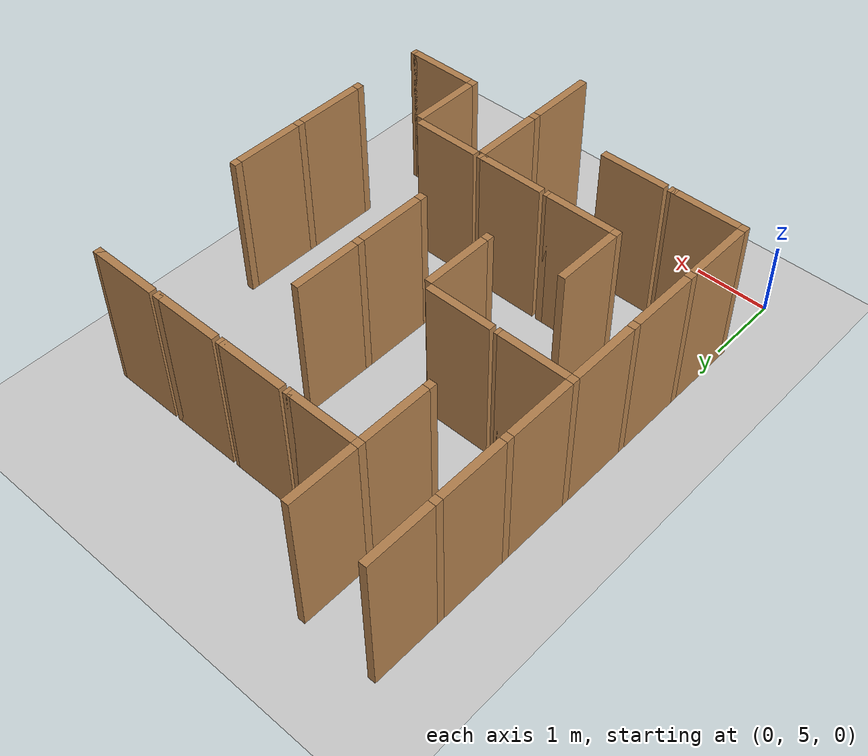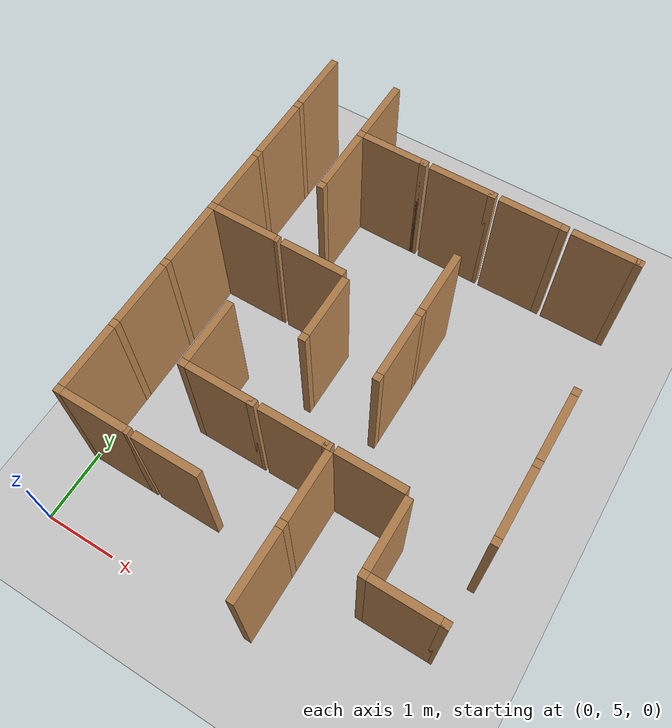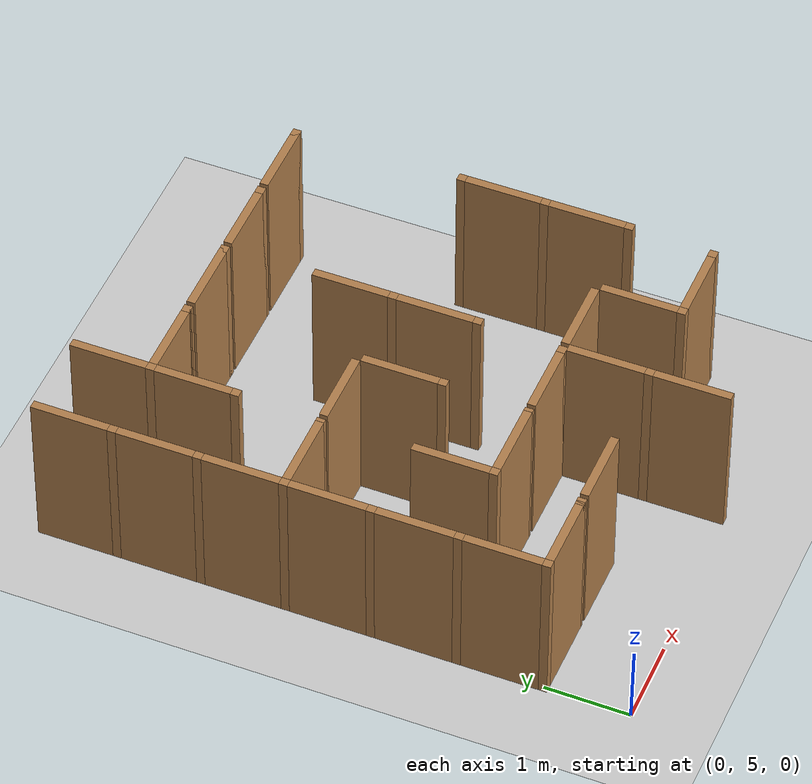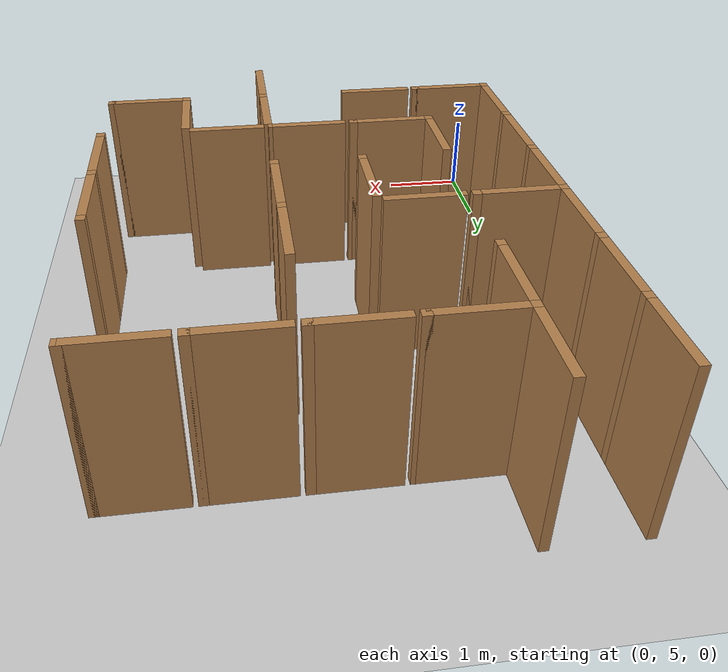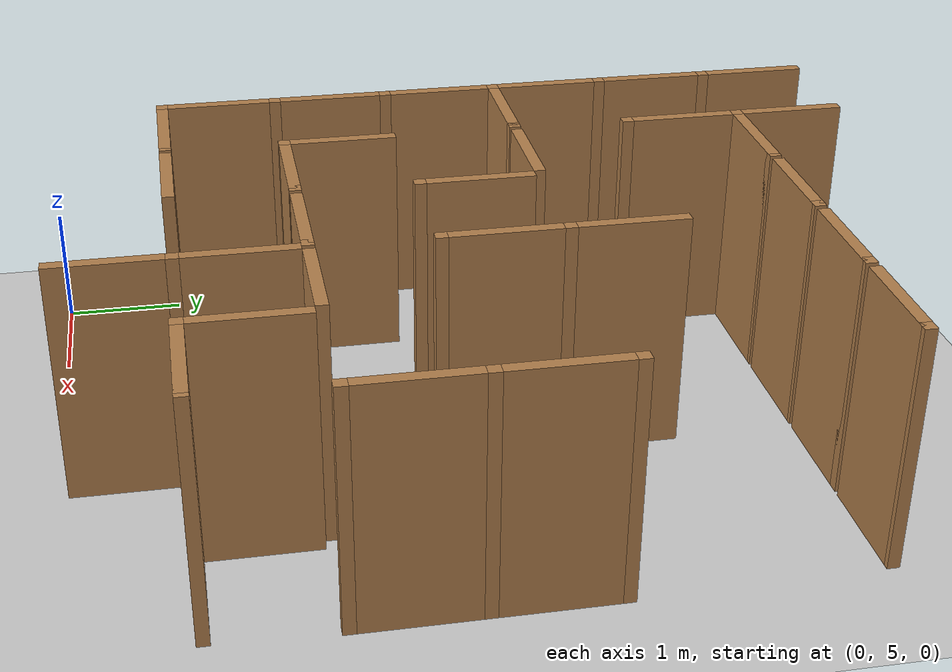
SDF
<sdf version="1.6">
 <world name="default">
  <include><uri>model://sun</uri></include>
  <model name="ground_plane">
   <static>true</static>
   <link name="link">
    <collision name="collision"><geometry><plane><size>12.0 12.0</size></plane></geometry></collision>
    <visual name="visual">
     <cast_shadows>false</cast_shadows>
     <geometry><plane><size>12.0 12.0</size></plane></geometry>
     <material>
      <script><uri>file://media/materials/scripts/gazebo.material</uri><name>Gazebo/Grey</name></script>
     </material>
    </visual>
   </link>
   <pose>6.0 6.0 0 0 0 0</pose>
  </model>
  <model name="vwall_5_3">
   <pose>3.0 5.5 1.0 0 0 0</pose>
   <link name="link">
    <collision name="collision"><geometry><box><size>0.1 0.9 2</size></box></geometry></collision>
    <visual name="visual">
     <geometry><box><size>0.1 0.9 2</size></box></geometry>
     <material>
      <script><uri>file://media/materials/scripts/gazebo.material</uri><name>Gazebo/Wood</name></script>
     </material>
    </visual>
   </link>
  </model>
  <model name="vwall_6_0">
   <pose>0.0 6.5 1.0 0 0 0</pose>
   <link name="link">
    <collision name="collision"><geometry><box><size>0.1 0.9 2</size></box></geometry></collision>
    <visual name="visual">
     <geometry><box><size>0.1 0.9 2</size></box></geometry>
     <material>
      <script><uri>file://media/materials/scripts/gazebo.material</uri><name>Gazebo/Wood</name></script>
     </material>
    </visual>
   </link>
  </model>
  <model name="joint_0.0_6.0">
   <pose>0.0 6.0 1.0 0 0 0</pose>
   <link name="link">
    <collision name="collision"><geometry><box><size>0.1 0.1 2</size></box></geometry></collision>
    <visual name="visual">
     <geometry><box><size>0.1 0.1 2</size></box></geometry>
     <material>
      <script><uri>file://media/materials/scripts/gazebo.material</uri><name>Gazebo/Wood</name></script>
     </material>
    </visual>
   </link>
  </model>
  <model name="vwall_6_3">
   <pose>3.0 6.5 1.0 0 0 0</pose>
   <link name="link">
    <collision name="collision"><geometry><box><size>0.1 0.9 2</size></box></geometry></collision>
    <visual name="visual">
     <geometry><box><size>0.1 0.9 2</size></box></geometry>
     <material>
      <script><uri>file://media/materials/scripts/gazebo.material</uri><name>Gazebo/Wood</name></script>
     </material>
    </visual>
   </link>
  </model>
  <model name="joint_3.0_6.0">
   <pose>3.0 6.0 1.0 0 0 0</pose>
   <link name="link">
    <collision name="collision"><geometry><box><size>0.1 0.1 2</size></box></geometry></collision>
    <visual name="visual">
     <geometry><box><size>0.1 0.1 2</size></box></geometry>
     <material>
      <script><uri>file://media/materials/scripts/gazebo.material</uri><name>Gazebo/Wood</name></script>
     </material>
    </visual>
   </link>
  </model>
  <model name="vwall_6_4">
   <pose>4.0 6.5 1.0 0 0 0</pose>
   <link name="link">
    <collision name="collision"><geometry><box><size>0.1 0.9 2</size></box></geometry></collision>
    <visual name="visual">
     <geometry><box><size>0.1 0.9 2</size></box></geometry>
     <material>
      <script><uri>file://media/materials/scripts/gazebo.material</uri><name>Gazebo/Wood</name></script>
     </material>
    </visual>
   </link>
  </model>
  <model name="joint_4.0_6.0">
   <pose>4.0 6.0 1.0 0 0 0</pose>
   <link name="link">
    <collision name="collision"><geometry><box><size>0.1 0.1 2</size></box></geometry></collision>
    <visual name="visual">
     <geometry><box><size>0.1 0.1 2</size></box></geometry>
     <material>
      <script><uri>file://media/materials/scripts/gazebo.material</uri><name>Gazebo/Wood</name></script>
     </material>
    </visual>
   </link>
  </model>
  <model name="vwall_7_0">
   <pose>0.0 7.5 1.0 0 0 0</pose>
   <link name="link">
    <collision name="collision"><geometry><box><size>0.1 0.9 2</size></box></geometry></collision>
    <visual name="visual">
     <geometry><box><size>0.1 0.9 2</size></box></geometry>
     <material>
      <script><uri>file://media/materials/scripts/gazebo.material</uri><name>Gazebo/Wood</name></script>
     </material>
    </visual>
   </link>
  </model>
  <model name="joint_0.0_7.0">
   <pose>0.0 7.0 1.0 0 0 0</pose>
   <link name="link">
    <collision name="collision"><geometry><box><size>0.1 0.1 2</size></box></geometry></collision>
    <visual name="visual">
     <geometry><box><size>0.1 0.1 2</size></box></geometry>
     <material>
      <script><uri>file://media/materials/scripts/gazebo.material</uri><name>Gazebo/Wood</name></script>
     </material>
    </visual>
   </link>
  </model>
  <model name="vwall_7_1">
   <pose>1.0 7.5 1.0 0 0 0</pose>
   <link name="link">
    <collision name="collision"><geometry><box><size>0.1 0.9 2</size></box></geometry></collision>
    <visual name="visual">
     <geometry><box><size>0.1 0.9 2</size></box></geometry>
     <material>
      <script><uri>file://media/materials/scripts/gazebo.material</uri><name>Gazebo/Wood</name></script>
     </material>
    </visual>
   </link>
  </model>
  <model name="joint_1.0_7.0">
   <pose>1.0 7.0 1.0 0 0 0</pose>
   <link name="link">
    <collision name="collision"><geometry><box><size>0.1 0.1 2</size></box></geometry></collision>
    <visual name="visual">
     <geometry><box><size>0.1 0.1 2</size></box></geometry>
     <material>
      <script><uri>file://media/materials/scripts/gazebo.material</uri><name>Gazebo/Wood</name></script>
     </material>
    </visual>
   </link>
  </model>
  <model name="vwall_7_5">
   <pose>5.0 7.5 1.0 0 0 0</pose>
   <link name="link">
    <collision name="collision"><geometry><box><size>0.1 0.9 2</size></box></geometry></collision>
    <visual name="visual">
     <geometry><box><size>0.1 0.9 2</size></box></geometry>
     <material>
      <script><uri>file://media/materials/scripts/gazebo.material</uri><name>Gazebo/Wood</name></script>
     </material>
    </visual>
   </link>
  </model>
  <model name="joint_5.0_7.0">
   <pose>5.0 7.0 1.0 0 0 0</pose>
   <link name="link">
    <collision name="collision"><geometry><box><size>0.1 0.1 2</size></box></geometry></collision>
    <visual name="visual">
     <geometry><box><size>0.1 0.1 2</size></box></geometry>
     <material>
      <script><uri>file://media/materials/scripts/gazebo.material</uri><name>Gazebo/Wood</name></script>
     </material>
    </visual>
   </link>
  </model>
  <model name="vwall_8_0">
   <pose>0.0 8.5 1.0 0 0 0</pose>
   <link name="link">
    <collision name="collision"><geometry><box><size>0.1 0.9 2</size></box></geometry></collision>
    <visual name="visual">
     <geometry><box><size>0.1 0.9 2</size></box></geometry>
     <material>
      <script><uri>file://media/materials/scripts/gazebo.material</uri><name>Gazebo/Wood</name></script>
     </material>
    </visual>
   </link>
  </model>
  <model name="joint_0.0_8.0">
   <pose>0.0 8.0 1.0 0 0 0</pose>
   <link name="link">
    <collision name="collision"><geometry><box><size>0.1 0.1 2</size></box></geometry></collision>
    <visual name="visual">
     <geometry><box><size>0.1 0.1 2</size></box></geometry>
     <material>
      <script><uri>file://media/materials/scripts/gazebo.material</uri><name>Gazebo/Wood</name></script>
     </material>
    </visual>
   </link>
  </model>
  <model name="vwall_8_2">
   <pose>2.0 8.5 1.0 0 0 0</pose>
   <link name="link">
    <collision name="collision"><geometry><box><size>0.1 0.9 2</size></box></geometry></collision>
    <visual name="visual">
     <geometry><box><size>0.1 0.9 2</size></box></geometry>
     <material>
      <script><uri>file://media/materials/scripts/gazebo.material</uri><name>Gazebo/Wood</name></script>
     </material>
    </visual>
   </link>
  </model>
  <model name="joint_2.0_8.0">
   <pose>2.0 8.0 1.0 0 0 0</pose>
   <link name="link">
    <collision name="collision"><geometry><box><size>0.1 0.1 2</size></box></geometry></collision>
    <visual name="visual">
     <geometry><box><size>0.1 0.1 2</size></box></geometry>
     <material>
      <script><uri>file://media/materials/scripts/gazebo.material</uri><name>Gazebo/Wood</name></script>
     </material>
    </visual>
   </link>
  </model>
  <model name="vwall_8_3">
   <pose>3.0 8.5 1.0 0 0 0</pose>
   <link name="link">
    <collision name="collision"><geometry><box><size>0.1 0.9 2</size></box></geometry></collision>
    <visual name="visual">
     <geometry><box><size>0.1 0.9 2</size></box></geometry>
     <material>
      <script><uri>file://media/materials/scripts/gazebo.material</uri><name>Gazebo/Wood</name></script>
     </material>
    </visual>
   </link>
  </model>
  <model name="joint_3.0_8.0">
   <pose>3.0 8.0 1.0 0 0 0</pose>
   <link name="link">
    <collision name="collision"><geometry><box><size>0.1 0.1 2</size></box></geometry></collision>
    <visual name="visual">
     <geometry><box><size>0.1 0.1 2</size></box></geometry>
     <material>
      <script><uri>file://media/materials/scripts/gazebo.material</uri><name>Gazebo/Wood</name></script>
     </material>
    </visual>
   </link>
  </model>
  <model name="vwall_8_5">
   <pose>5.0 8.5 1.0 0 0 0</pose>
   <link name="link">
    <collision name="collision"><geometry><box><size>0.1 0.9 2</size></box></geometry></collision>
    <visual name="visual">
     <geometry><box><size>0.1 0.9 2</size></box></geometry>
     <material>
      <script><uri>file://media/materials/scripts/gazebo.material</uri><name>Gazebo/Wood</name></script>
     </material>
    </visual>
   </link>
  </model>
  <model name="joint_5.0_8.0">
   <pose>5.0 8.0 1.0 0 0 0</pose>
   <link name="link">
    <collision name="collision"><geometry><box><size>0.1 0.1 2</size></box></geometry></collision>
    <visual name="visual">
     <geometry><box><size>0.1 0.1 2</size></box></geometry>
     <material>
      <script><uri>file://media/materials/scripts/gazebo.material</uri><name>Gazebo/Wood</name></script>
     </material>
    </visual>
   </link>
  </model>
  <model name="vwall_9_0">
   <pose>0.0 9.5 1.0 0 0 0</pose>
   <link name="link">
    <collision name="collision"><geometry><box><size>0.1 0.9 2</size></box></geometry></collision>
    <visual name="visual">
     <geometry><box><size>0.1 0.9 2</size></box></geometry>
     <material>
      <script><uri>file://media/materials/scripts/gazebo.material</uri><name>Gazebo/Wood</name></script>
     </material>
    </visual>
   </link>
  </model>
  <model name="joint_0.0_9.0">
   <pose>0.0 9.0 1.0 0 0 0</pose>
   <link name="link">
    <collision name="collision"><geometry><box><size>0.1 0.1 2</size></box></geometry></collision>
    <visual name="visual">
     <geometry><box><size>0.1 0.1 2</size></box></geometry>
     <material>
      <script><uri>file://media/materials/scripts/gazebo.material</uri><name>Gazebo/Wood</name></script>
     </material>
    </visual>
   </link>
  </model>
  <model name="vwall_9_3">
   <pose>3.0 9.5 1.0 0 0 0</pose>
   <link name="link">
    <collision name="collision"><geometry><box><size>0.1 0.9 2</size></box></geometry></collision>
    <visual name="visual">
     <geometry><box><size>0.1 0.9 2</size></box></geometry>
     <material>
      <script><uri>file://media/materials/scripts/gazebo.material</uri><name>Gazebo/Wood</name></script>
     </material>
    </visual>
   </link>
  </model>
  <model name="joint_3.0_9.0">
   <pose>3.0 9.0 1.0 0 0 0</pose>
   <link name="link">
    <collision name="collision"><geometry><box><size>0.1 0.1 2</size></box></geometry></collision>
    <visual name="visual">
     <geometry><box><size>0.1 0.1 2</size></box></geometry>
     <material>
      <script><uri>file://media/materials/scripts/gazebo.material</uri><name>Gazebo/Wood</name></script>
     </material>
    </visual>
   </link>
  </model>
  <model name="joint_5.0_9.0">
   <pose>5.0 9.0 1.0 0 0 0</pose>
   <link name="link">
    <collision name="collision"><geometry><box><size>0.1 0.1 2</size></box></geometry></collision>
    <visual name="visual">
     <geometry><box><size>0.1 0.1 2</size></box></geometry>
     <material>
      <script><uri>file://media/materials/scripts/gazebo.material</uri><name>Gazebo/Wood</name></script>
     </material>
    </visual>
   </link>
  </model>
  <model name="vwall_10_0">
   <pose>0.0 10.5 1.0 0 0 0</pose>
   <link name="link">
    <collision name="collision"><geometry><box><size>0.1 0.9 2</size></box></geometry></collision>
    <visual name="visual">
     <geometry><box><size>0.1 0.9 2</size></box></geometry>
     <material>
      <script><uri>file://media/materials/scripts/gazebo.material</uri><name>Gazebo/Wood</name></script>
     </material>
    </visual>
   </link>
  </model>
  <model name="joint_0.0_10.0">
   <pose>0.0 10.0 1.0 0 0 0</pose>
   <link name="link">
    <collision name="collision"><geometry><box><size>0.1 0.1 2</size></box></geometry></collision>
    <visual name="visual">
     <geometry><box><size>0.1 0.1 2</size></box></geometry>
     <material>
      <script><uri>file://media/materials/scripts/gazebo.material</uri><name>Gazebo/Wood</name></script>
     </material>
    </visual>
   </link>
  </model>
  <model name="vwall_10_1">
   <pose>1.0 10.5 1.0 0 0 0</pose>
   <link name="link">
    <collision name="collision"><geometry><box><size>0.1 0.9 2</size></box></geometry></collision>
    <visual name="visual">
     <geometry><box><size>0.1 0.9 2</size></box></geometry>
     <material>
      <script><uri>file://media/materials/scripts/gazebo.material</uri><name>Gazebo/Wood</name></script>
     </material>
    </visual>
   </link>
  </model>
  <model name="joint_1.0_10.0">
   <pose>1.0 10.0 1.0 0 0 0</pose>
   <link name="link">
    <collision name="collision"><geometry><box><size>0.1 0.1 2</size></box></geometry></collision>
    <visual name="visual">
     <geometry><box><size>0.1 0.1 2</size></box></geometry>
     <material>
      <script><uri>file://media/materials/scripts/gazebo.material</uri><name>Gazebo/Wood</name></script>
     </material>
    </visual>
   </link>
  </model>
  <model name="vwall_11_0">
   <pose>0.0 11.5 1.0 0 0 0</pose>
   <link name="link">
    <collision name="collision"><geometry><box><size>0.1 0.9 2</size></box></geometry></collision>
    <visual name="visual">
     <geometry><box><size>0.1 0.9 2</size></box></geometry>
     <material>
      <script><uri>file://media/materials/scripts/gazebo.material</uri><name>Gazebo/Wood</name></script>
     </material>
    </visual>
   </link>
  </model>
  <model name="joint_0.0_11.0">
   <pose>0.0 11.0 1.0 0 0 0</pose>
   <link name="link">
    <collision name="collision"><geometry><box><size>0.1 0.1 2</size></box></geometry></collision>
    <visual name="visual">
     <geometry><box><size>0.1 0.1 2</size></box></geometry>
     <material>
      <script><uri>file://media/materials/scripts/gazebo.material</uri><name>Gazebo/Wood</name></script>
     </material>
    </visual>
   </link>
  </model>
  <model name="vwall_11_1">
   <pose>1.0 11.5 1.0 0 0 0</pose>
   <link name="link">
    <collision name="collision"><geometry><box><size>0.1 0.9 2</size></box></geometry></collision>
    <visual name="visual">
     <geometry><box><size>0.1 0.9 2</size></box></geometry>
     <material>
      <script><uri>file://media/materials/scripts/gazebo.material</uri><name>Gazebo/Wood</name></script>
     </material>
    </visual>
   </link>
  </model>
  <model name="joint_1.0_11.0">
   <pose>1.0 11.0 1.0 0 0 0</pose>
   <link name="link">
    <collision name="collision"><geometry><box><size>0.1 0.1 2</size></box></geometry></collision>
    <visual name="visual">
     <geometry><box><size>0.1 0.1 2</size></box></geometry>
     <material>
      <script><uri>file://media/materials/scripts/gazebo.material</uri><name>Gazebo/Wood</name></script>
     </material>
    </visual>
   </link>
  </model>
  <model name="hwall_6_0">
   <pose>0.5 6.0 1.0 0 0 0</pose>
   <link name="link">
    <collision name="collision"><geometry><box><size>0.9 0.1 2</size></box></geometry></collision>
    <visual name="visual">
     <geometry><box><size>0.9 0.1 2</size></box></geometry>
     <material>
      <script><uri>file://media/materials/scripts/gazebo.material</uri><name>Gazebo/Wood</name></script>
     </material>
    </visual>
   </link>
  </model>
  <model name="joint_0.95_6.0">
   <pose>0.95 6.0 1.0 0 0 0</pose>
   <link name="link">
    <collision name="collision"><geometry><box><size>0.1 0.1 2</size></box></geometry></collision>
    <visual name="visual">
     <geometry><box><size>0.1 0.1 2</size></box></geometry>
     <material>
      <script><uri>file://media/materials/scripts/gazebo.material</uri><name>Gazebo/Wood</name></script>
     </material>
    </visual>
   </link>
  </model>
  <model name="hwall_6_1">
   <pose>1.5 6.0 1.0 0 0 0</pose>
   <link name="link">
    <collision name="collision"><geometry><box><size>0.9 0.1 2</size></box></geometry></collision>
    <visual name="visual">
     <geometry><box><size>0.9 0.1 2</size></box></geometry>
     <material>
      <script><uri>file://media/materials/scripts/gazebo.material</uri><name>Gazebo/Wood</name></script>
     </material>
    </visual>
   </link>
  </model>
  <model name="hwall_6_4">
   <pose>4.5 6.0 1.0 0 0 0</pose>
   <link name="link">
    <collision name="collision"><geometry><box><size>0.9 0.1 2</size></box></geometry></collision>
    <visual name="visual">
     <geometry><box><size>0.9 0.1 2</size></box></geometry>
     <material>
      <script><uri>file://media/materials/scripts/gazebo.material</uri><name>Gazebo/Wood</name></script>
     </material>
    </visual>
   </link>
  </model>
  <model name="joint_4.95_6.0">
   <pose>4.95 6.0 1.0 0 0 0</pose>
   <link name="link">
    <collision name="collision"><geometry><box><size>0.1 0.1 2</size></box></geometry></collision>
    <visual name="visual">
     <geometry><box><size>0.1 0.1 2</size></box></geometry>
     <material>
      <script><uri>file://media/materials/scripts/gazebo.material</uri><name>Gazebo/Wood</name></script>
     </material>
    </visual>
   </link>
  </model>
  <model name="hwall_7_1">
   <pose>1.5 7.0 1.0 0 0 0</pose>
   <link name="link">
    <collision name="collision"><geometry><box><size>0.9 0.1 2</size></box></geometry></collision>
    <visual name="visual">
     <geometry><box><size>0.9 0.1 2</size></box></geometry>
     <material>
      <script><uri>file://media/materials/scripts/gazebo.material</uri><name>Gazebo/Wood</name></script>
     </material>
    </visual>
   </link>
  </model>
  <model name="joint_1.95_7.0">
   <pose>1.95 7.0 1.0 0 0 0</pose>
   <link name="link">
    <collision name="collision"><geometry><box><size>0.1 0.1 2</size></box></geometry></collision>
    <visual name="visual">
     <geometry><box><size>0.1 0.1 2</size></box></geometry>
     <material>
      <script><uri>file://media/materials/scripts/gazebo.material</uri><name>Gazebo/Wood</name></script>
     </material>
    </visual>
   </link>
  </model>
  <model name="hwall_7_2">
   <pose>2.5 7.0 1.0 0 0 0</pose>
   <link name="link">
    <collision name="collision"><geometry><box><size>0.9 0.1 2</size></box></geometry></collision>
    <visual name="visual">
     <geometry><box><size>0.9 0.1 2</size></box></geometry>
     <material>
      <script><uri>file://media/materials/scripts/gazebo.material</uri><name>Gazebo/Wood</name></script>
     </material>
    </visual>
   </link>
  </model>
  <model name="joint_2.95_7.0">
   <pose>2.95 7.0 1.0 0 0 0</pose>
   <link name="link">
    <collision name="collision"><geometry><box><size>0.1 0.1 2</size></box></geometry></collision>
    <visual name="visual">
     <geometry><box><size>0.1 0.1 2</size></box></geometry>
     <material>
      <script><uri>file://media/materials/scripts/gazebo.material</uri><name>Gazebo/Wood</name></script>
     </material>
    </visual>
   </link>
  </model>
  <model name="hwall_7_3">
   <pose>3.5 7.0 1.0 0 0 0</pose>
   <link name="link">
    <collision name="collision"><geometry><box><size>0.9 0.1 2</size></box></geometry></collision>
    <visual name="visual">
     <geometry><box><size>0.9 0.1 2</size></box></geometry>
     <material>
      <script><uri>file://media/materials/scripts/gazebo.material</uri><name>Gazebo/Wood</name></script>
     </material>
    </visual>
   </link>
  </model>
  <model name="hwall_9_0">
   <pose>0.5 9.0 1.0 0 0 0</pose>
   <link name="link">
    <collision name="collision"><geometry><box><size>0.9 0.1 2</size></box></geometry></collision>
    <visual name="visual">
     <geometry><box><size>0.9 0.1 2</size></box></geometry>
     <material>
      <script><uri>file://media/materials/scripts/gazebo.material</uri><name>Gazebo/Wood</name></script>
     </material>
    </visual>
   </link>
  </model>
  <model name="joint_0.95_9.0">
   <pose>0.95 9.0 1.0 0 0 0</pose>
   <link name="link">
    <collision name="collision"><geometry><box><size>0.1 0.1 2</size></box></geometry></collision>
    <visual name="visual">
     <geometry><box><size>0.1 0.1 2</size></box></geometry>
     <material>
      <script><uri>file://media/materials/scripts/gazebo.material</uri><name>Gazebo/Wood</name></script>
     </material>
    </visual>
   </link>
  </model>
  <model name="hwall_9_1">
   <pose>1.5 9.0 1.0 0 0 0</pose>
   <link name="link">
    <collision name="collision"><geometry><box><size>0.9 0.1 2</size></box></geometry></collision>
    <visual name="visual">
     <geometry><box><size>0.9 0.1 2</size></box></geometry>
     <material>
      <script><uri>file://media/materials/scripts/gazebo.material</uri><name>Gazebo/Wood</name></script>
     </material>
    </visual>
   </link>
  </model>
  <model name="hwall_11_1">
   <pose>1.5 11.0 1.0 0 0 0</pose>
   <link name="link">
    <collision name="collision"><geometry><box><size>0.9 0.1 2</size></box></geometry></collision>
    <visual name="visual">
     <geometry><box><size>0.9 0.1 2</size></box></geometry>
     <material>
      <script><uri>file://media/materials/scripts/gazebo.material</uri><name>Gazebo/Wood</name></script>
     </material>
    </visual>
   </link>
  </model>
  <model name="joint_1.95_11.0">
   <pose>1.95 11.0 1.0 0 0 0</pose>
   <link name="link">
    <collision name="collision"><geometry><box><size>0.1 0.1 2</size></box></geometry></collision>
    <visual name="visual">
     <geometry><box><size>0.1 0.1 2</size></box></geometry>
     <material>
      <script><uri>file://media/materials/scripts/gazebo.material</uri><name>Gazebo/Wood</name></script>
     </material>
    </visual>
   </link>
  </model>
  <model name="hwall_11_2">
   <pose>2.5 11.0 1.0 0 0 0</pose>
   <link name="link">
    <collision name="collision"><geometry><box><size>0.9 0.1 2</size></box></geometry></collision>
    <visual name="visual">
     <geometry><box><size>0.9 0.1 2</size></box></geometry>
     <material>
      <script><uri>file://media/materials/scripts/gazebo.material</uri><name>Gazebo/Wood</name></script>
     </material>
    </visual>
   </link>
  </model>
  <model name="joint_2.95_11.0">
   <pose>2.95 11.0 1.0 0 0 0</pose>
   <link name="link">
    <collision name="collision"><geometry><box><size>0.1 0.1 2</size></box></geometry></collision>
    <visual name="visual">
     <geometry><box><size>0.1 0.1 2</size></box></geometry>
     <material>
      <script><uri>file://media/materials/scripts/gazebo.material</uri><name>Gazebo/Wood</name></script>
     </material>
    </visual>
   </link>
  </model>
  <model name="hwall_11_3">
   <pose>3.5 11.0 1.0 0 0 0</pose>
   <link name="link">
    <collision name="collision"><geometry><box><size>0.9 0.1 2</size></box></geometry></collision>
    <visual name="visual">
     <geometry><box><size>0.9 0.1 2</size></box></geometry>
     <material>
      <script><uri>file://media/materials/scripts/gazebo.material</uri><name>Gazebo/Wood</name></script>
     </material>
    </visual>
   </link>
  </model>
  <model name="joint_3.95_11.0">
   <pose>3.95 11.0 1.0 0 0 0</pose>
   <link name="link">
    <collision name="collision"><geometry><box><size>0.1 0.1 2</size></box></geometry></collision>
    <visual name="visual">
     <geometry><box><size>0.1 0.1 2</size></box></geometry>
     <material>
      <script><uri>file://media/materials/scripts/gazebo.material</uri><name>Gazebo/Wood</name></script>
     </material>
    </visual>
   </link>
  </model>
  <model name="hwall_11_4">
   <pose>4.5 11.0 1.0 0 0 0</pose>
   <link name="link">
    <collision name="collision"><geometry><box><size>0.9 0.1 2</size></box></geometry></collision>
    <visual name="visual">
     <geometry><box><size>0.9 0.1 2</size></box></geometry>
     <material>
      <script><uri>file://media/materials/scripts/gazebo.material</uri><name>Gazebo/Wood</name></script>
     </material>
    </visual>
   </link>
  </model>
  <model name="joint_4.95_11.0">
   <pose>4.95 11.0 1.0 0 0 0</pose>
   <link name="link">
    <collision name="collision"><geometry><box><size>0.1 0.1 2</size></box></geometry></collision>
    <visual name="visual">
     <geometry><box><size>0.1 0.1 2</size></box></geometry>
     <material>
      <script><uri>file://media/materials/scripts/gazebo.material</uri><name>Gazebo/Wood</name></script>
     </material>
    </visual>
   </link>
  </model>
 </world>
</sdf>
